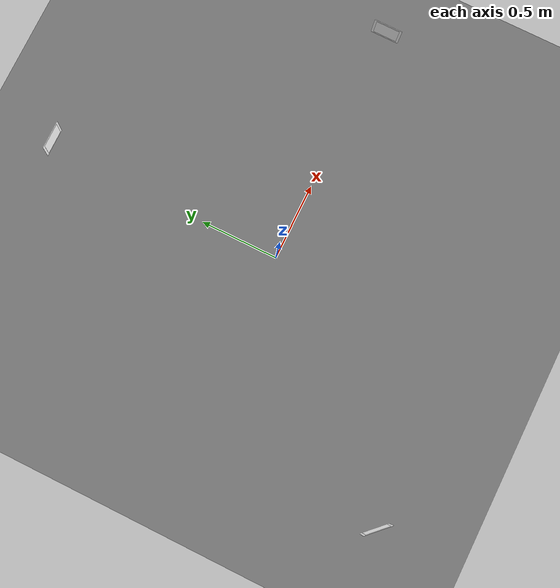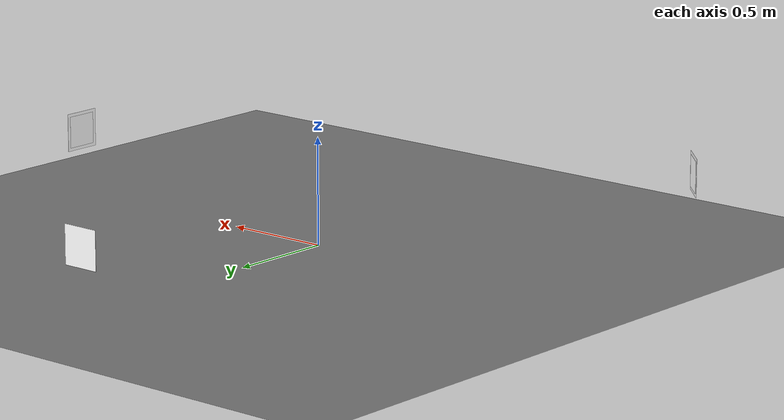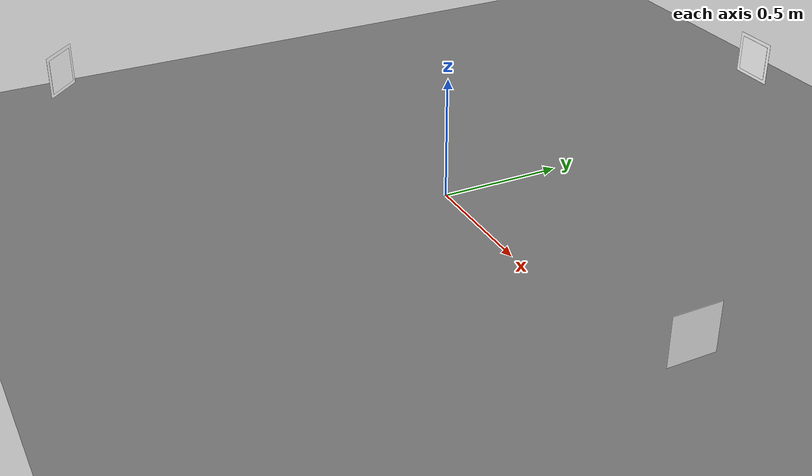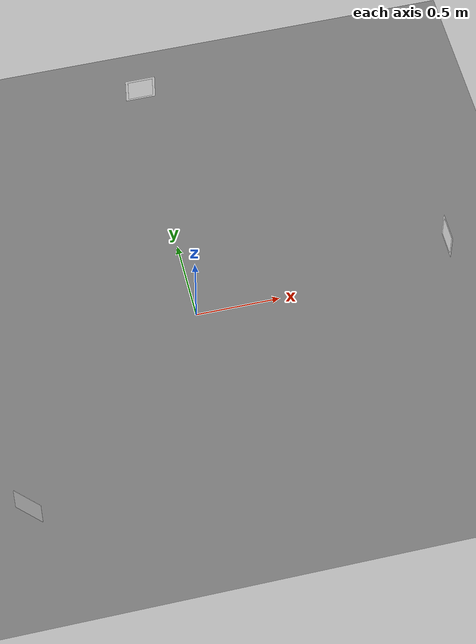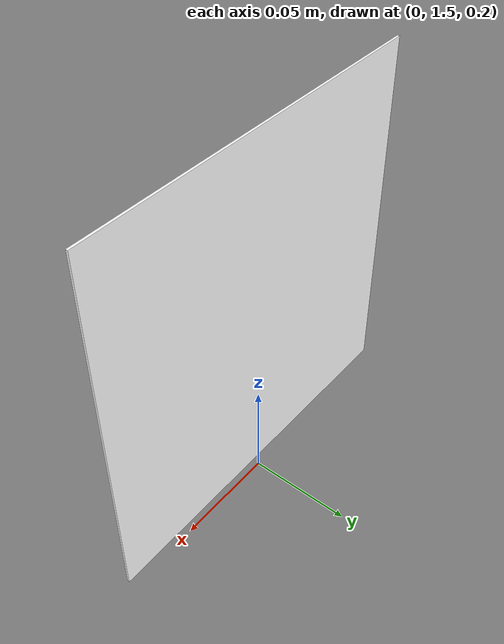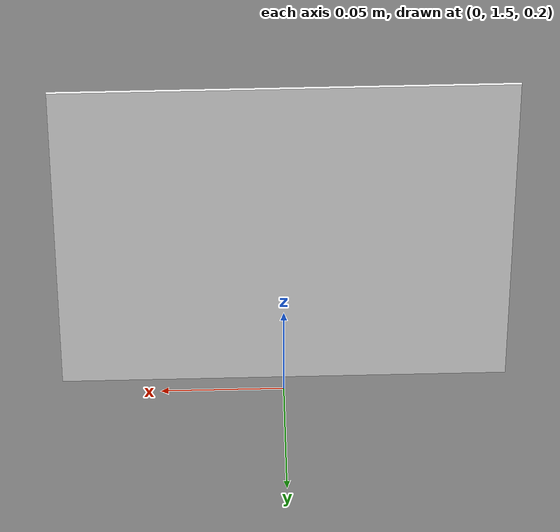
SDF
<?xml version="1.0"?>
<sdf version="1.9">
  <world name="aruco_empty_world">

    <!-- Physics settings -->
    <physics name="1ms" type="ignored">
      <max_step_size>0.001</max_step_size>
      <real_time_factor>1.0</real_time_factor>
    </physics>

    <!-- Plugins for Gz Sim -->
    <plugin
      filename="gz-sim-physics-system"
      name="gz::sim::systems::Physics">
    </plugin>
    <plugin
      filename="gz-sim-user-commands-system"
      name="gz::sim::systems::UserCommands">
    </plugin>
    <plugin
      filename="gz-sim-scene-broadcaster-system"
      name="gz::sim::systems::SceneBroadcaster">
    </plugin>
    <plugin
      filename="gz-sim-sensors-system"
      name="gz::sim::systems::Sensors">
      <render_engine>ogre2</render_engine>
    </plugin>

    <!-- Scene settings -->
    <scene>
      <ambient>0.4 0.4 0.4 1</ambient>
      <background>0.7 0.7 0.7 1</background>
      <shadows>true</shadows>
    </scene>

    <!-- Sun light -->
    <light type="directional" name="sun">
      <cast_shadows>true</cast_shadows>
      <pose>0 0 10 0 0 0</pose>
      <diffuse>0.8 0.8 0.8 1</diffuse>
      <specular>0.2 0.2 0.2 1</specular>
      <attenuation>
        <range>1000</range>
        <constant>0.9</constant>
        <linear>0.01</linear>
        <quadratic>0.001</quadratic>
      </attenuation>
      <direction>-0.5 0.1 -0.9</direction>
    </light>

    <!-- Ground plane -->
    <model name="ground_plane">
      <static>true</static>
      <link name="link">
        <collision name="collision">
          <geometry>
            <plane>
              <normal>0 0 1</normal>
              <size>100 100</size>
            </plane>
          </geometry>
          <surface>
            <friction>
              <ode>
                <mu>100</mu>
                <mu2>50</mu2>
              </ode>
            </friction>
          </surface>
        </collision>
        <visual name="visual">
          <cast_shadows>false</cast_shadows>
          <geometry>
            <plane>
              <normal>0 0 1</normal>
              <size>100 100</size>
            </plane>
          </geometry>
          <material>
            <ambient>0.5 0.5 0.5 1</ambient>
            <diffuse>0.5 0.5 0.5 1</diffuse>
            <specular>0.1 0.1 0.1 1</specular>
          </material>
        </visual>
      </link>
    </model>

    <!-- ArUco Markers                                                         -->
    <!-- Positioned around the robot at approximately camera height (~0.3m)    -->
    <!-- TurtleBot3 Waffle Pi camera is at approximately 0.287m height         -->
    <!-- Markers are placed at 1.5m distance from origin, facing inward        -->

    <!-- ArUco Marker 0: In front of robot (+X direction) -->
    <!-- Marker faces -X (toward robot at origin) -->
    <include>
      <uri>model://aruco_marker_0</uri>
      <name>aruco_marker_0</name>
      <pose>1.5 0 0.3 0 1.57 3.14159</pose>
      <static>true</static>
    </include>

    <!-- ArUco Marker 1: To the left of robot (+Y direction) -->
    <!-- Marker faces -Y (toward robot at origin) -->
    <include>
      <uri>model://aruco_marker_1</uri>
      <name>aruco_marker_1</name>
      <pose>0 1.5 0.3 0 1.57 -1.5708</pose>
      <static>true</static>
    </include>

    <!-- ArUco Marker 2: Behind and to the right of robot (-X, -Y direction) -->
    <!-- Marker faces toward robot at origin (diagonal) -->
    <include>
      <uri>model://aruco_marker_2</uri>
      <name>aruco_marker_2</name>
      <pose>-1.2 -1.2 0.3 0 1.57 0.7854</pose>
      <static>true</static>
    </include>

  </world>
</sdf>

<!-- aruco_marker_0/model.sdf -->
<sdf version="1.9">
  <model name="aruco_marker_0">
    <static>true</static>
    <link name="marker_link">

      <!-- White backing/border -->
      <visual name="border_visual">
        <pose>0 0 0 0 0 0</pose>
        <geometry>
          <box>
            <size>0.18 0.18 0.002</size>
          </box>
        </geometry>
        <material>
          <ambient>1 1 1 1</ambient>
          <diffuse>1 1 1 1</diffuse>
        </material>
      </visual>

      <!-- ArUco marker texture on top -->
      <visual name="marker_visual">
        <pose>0 0 0.0011 0 0 0</pose>  <!-- Just above the white backing -->
        <geometry>
          <plane>
            <size>0.15 0.15</size>
          </plane>
        </geometry>
        <material>
          <ambient>1 1 1 1</ambient>
          <diffuse>1 1 1 1</diffuse>
          <pbr>
            <metal>
              <albedo_map>model://aruco_marker_0/materials/textures/aruco_marker_0.png</albedo_map>
              <metalness>0.0</metalness>
              <roughness>1.0</roughness>
            </metal>
          </pbr>
        </material>
      </visual>

      <!-- Collision -->
      <collision name="marker_collision">
        <pose>0 0 0 0 0 0</pose>
        <geometry>
          <box>
            <size>0.18 0.18 0.005</size>
          </box>
        </geometry>
      </collision>

    </link>
  </model>
</sdf>

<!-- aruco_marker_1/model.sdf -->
<sdf version="1.9">
  <model name="aruco_marker_1">
    <static>true</static>
    <link name="marker_link">

      <!-- Visual representation of the ArUco marker -->
      <visual name="marker_visual">
        <pose>0 0 0 0 0 0</pose>
        <geometry>
          <box>
            <size>0.15 0.15 0.002</size>  <!-- 15cm x 15cm marker, 2mm thick -->
          </box>
        </geometry>
        <material>
          <pbr>
            <metal>
              <albedo_map>model://aruco_marker_1/materials/textures/aruco_marker_1.png</albedo_map>
              <metalness>0.0</metalness>
              <roughness>0.9</roughness>
            </metal>
          </pbr>

          <!-- Placeholder color (remove when using texture) -->
          <ambient>1 1 1 1</ambient>
          <diffuse>1 1 1 1</diffuse>
        </material>
      </visual>

      <!-- White border around the marker (typical for ArUco) -->
      <visual name="border_visual">
        <pose>0 0 -0.001 0 0 0</pose>
        <geometry>
          <box>
            <size>0.18 0.18 0.001</size>  <!-- Slightly larger white backing -->
          </box>
        </geometry>
        <material>
          <ambient>1 1 1 1</ambient>
          <diffuse>1 1 1 1</diffuse>
        </material>
      </visual>

      <!-- Collision geometry -->
      <collision name="marker_collision">
        <pose>0 0 0 0 0 0</pose>
        <geometry>
          <box>
            <size>0.18 0.18 0.005</size>
          </box>
        </geometry>
      </collision>

      <!-- Inertial properties (minimal since static) -->
      <inertial>
        <mass>0.01</mass>
        <inertia>
          <ixx>0.0001</ixx>
          <ixy>0</ixy>
          <ixz>0</ixz>
          <iyy>0.0001</iyy>
          <iyz>0</iyz>
          <izz>0.0001</izz>
        </inertia>
      </inertial>

    </link>
  </model>
</sdf>

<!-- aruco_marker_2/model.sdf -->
<sdf version="1.9">
  <model name="aruco_marker_2">
    <static>true</static>
    <link name="marker_link">

      <!-- Visual representation of the ArUco marker -->
      <visual name="marker_visual">
        <pose>0 0 0 0 0 0</pose>
        <geometry>
          <box>
            <size>0.15 0.15 0.002</size>  <!-- 15cm x 15cm marker, 2mm thick -->
          </box>
        </geometry>
        <material>
          <ambient>1 1 1 1</ambient>
          <diffuse>1 1 1 1</diffuse>

          <pbr>
            <metal>
              <albedo_map>model://aruco_marker_2/materials/textures/aruco_marker_2.png</albedo_map>
              <metalness>0.0</metalness>
              <roughness>0.9</roughness>
            </metal>
          </pbr>
        </material>
      </visual>

      <!-- White border around the marker (typical for ArUco) -->
      <visual name="border_visual">
        <pose>0 0 -0.001 0 0 0</pose>
        <geometry>
          <box>
            <size>0.18 0.18 0.001</size>  <!-- Slightly larger white backing -->
          </box>
        </geometry>
        <material>
          <ambient>1 1 1 1</ambient>
          <diffuse>1 1 1 1</diffuse>
        </material>
      </visual>

      <!-- Collision geometry -->
      <collision name="marker_collision">
        <pose>0 0 0 0 0 0</pose>
        <geometry>
          <box>
            <size>0.18 0.18 0.005</size>
          </box>
        </geometry>
      </collision>

      <!-- Inertial properties (minimal since static) -->
      <inertial>
        <mass>0.01</mass>
        <inertia>
          <ixx>0.0001</ixx>
          <ixy>0</ixy>
          <ixz>0</ixz>
          <iyy>0.0001</iyy>
          <iyz>0</iyz>
          <izz>0.0001</izz>
        </inertia>
      </inertial>

    </link>
  </model>
</sdf>
